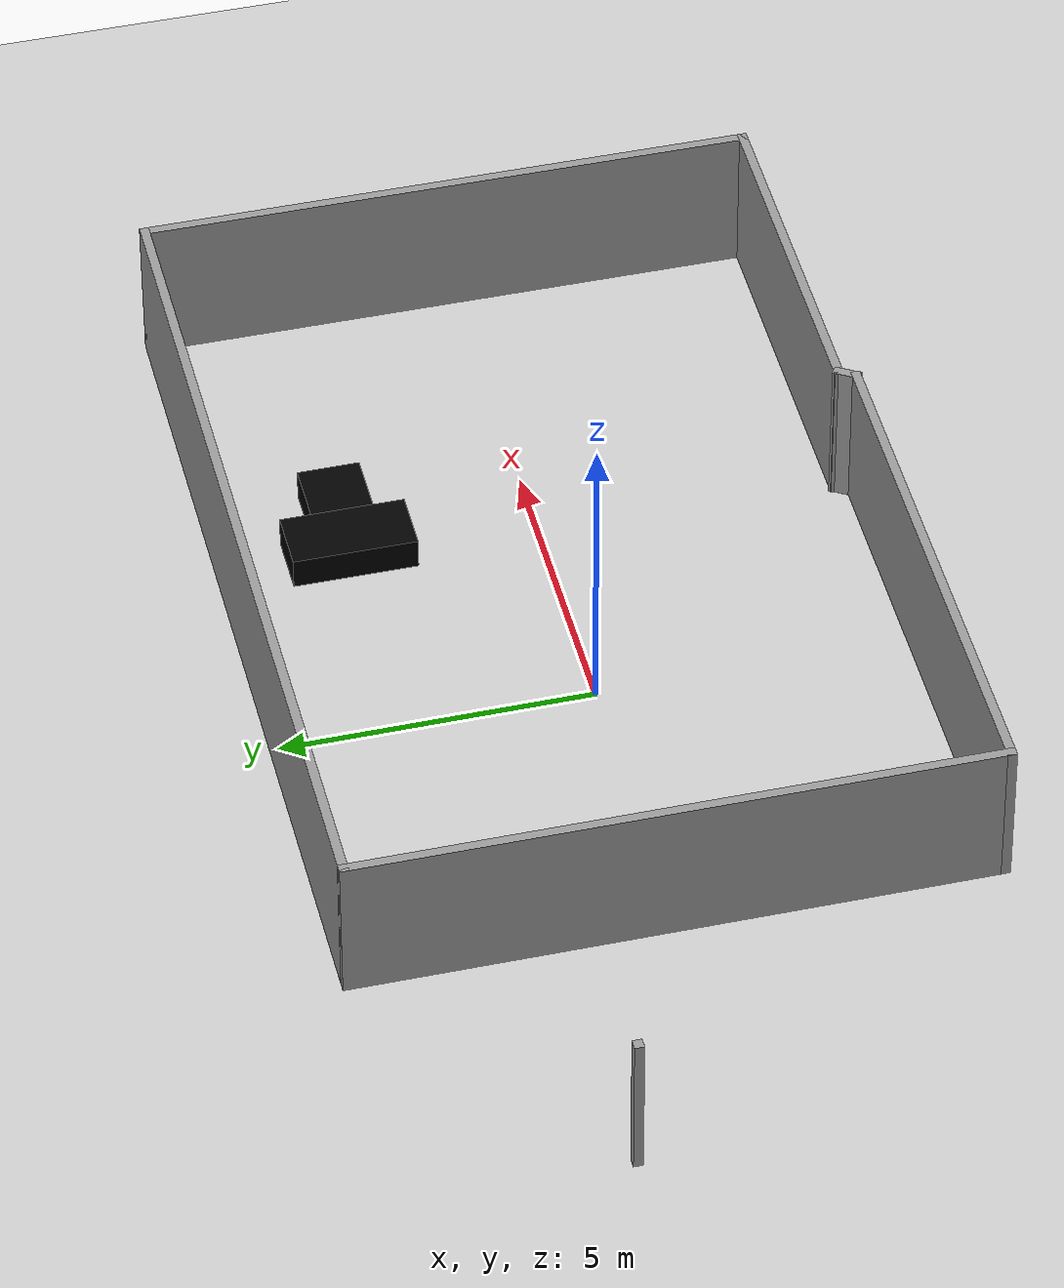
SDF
<sdf version='1.4'>
  <world name='default'>
    <!-- A global light source -->
    <include>
      <uri>model://sun</uri>
    </include>

    <!-- A ground plane -->
    <include>
      <uri>model://ground_plane</uri>
    </include>

    <include>
      <name>beer0</name>
      <uri>model://box1</uri>
      <static>true</static>
      <pose>5 3 0 0 0 0</pose>
    </include>

    <include>
      <name>box2</name>
      <uri>model://box2</uri>
      <static>true</static>
      <pose>4 3 0 0 0 0</pose>
    </include>

    <include>
      <name>wall</name>
      <uri>model://box5</uri>
      <static>true</static>
      <pose>0 0 0 0 0 0</pose>
    </include>

    <physics type="ode">
      <real_time_update_rate>1000.0</real_time_update_rate>
      <max_step_size>0.001</max_step_size>
      <real_time_factor>1</real_time_factor>
      <ode>
        <solver>
          <type>quick</type>
          <iters>150</iters>
          <precon_iters>0</precon_iters>
          <sor>1.400000</sor>
          <use_dynamic_moi_rescaling>1</use_dynamic_moi_rescaling>
        </solver>
        <constraints>
          <cfm>0.00001</cfm>
          <erp>0.2</erp>
          <contact_max_correcting_vel>2000.000000</contact_max_correcting_vel>
          <contact_surface_layer>0.01000</contact_surface_layer>
        </constraints>
      </ode>
    </physics>

    <!-- Load world -->

    <scene>
      <ambient>0.4 0.4 0.4 1</ambient>
      <background>0.7 0.7 0.7 1</background>
      <shadows>true</shadows>
    </scene>

    <gui fullscreen='0'>
      <camera name='user_camera'>
        <pose>0.8 0.0 12.0 0 1.5708 0</pose>
        <view_controller>orbit</view_controller>
      </camera>
    </gui>
  </world>
</sdf>

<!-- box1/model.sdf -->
<sdf version="1.4">
<model name="box1">
  <pose>0 0 0.5 0 0 0</pose>
    <link name="link">
      <inertial>
        <mass>1.0</mass>
        <inertia>
          <ixx>0.083</ixx>
          <ixy>0.0</ixy>
          <ixz>0.0</ixz>
          <iyy>0.083</iyy>
          <iyz>0.0</iyz>
          <izz>0.083</izz>
        </inertia>
      </inertial>
      <collision name="collision">
        <geometry>
          <box>
            <size>1 1 1</size>
          </box>
        </geometry>
      </collision>
      <visual name="visual">
        <material>
          <ambient>0 0 0 1</ambient>
          <diffuse>0 0 0 1</diffuse>
          <specular>0 0 0 1</specular>
          <emissive>1 1 0 1</emissive>
        </material>
        <geometry>
          <box>
            <size>1 1 1</size>
          </box>
        </geometry>
      </visual>
    </link>
  </model>
</sdf>

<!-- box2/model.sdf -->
<sdf version="1.4">
<model name="box2">
  <pose>0 0 0 0 0 0</pose>
    <link name="link">
      <inertial>
        <mass>1.0</mass>
        <inertia>
          <ixx>0.083</ixx>
          <ixy>0.0</ixy>
          <ixz>0.0</ixz>
          <iyy>0.083</iyy>
          <iyz>0.0</iyz>
          <izz>0.083</izz>
        </inertia>
      </inertial>
      <collision name="collision">
        <geometry>
          <box>
            <size>1 2 1</size>
          </box>
        </geometry>
      </collision>
      <visual name="visual">
        <material>
          <ambient>0 0 0 1</ambient>
          <diffuse>0 0 0 1</diffuse>
          <specular>0 0 0 1</specular>
          <emissive>1 0 0 1</emissive>
        </material>
        <geometry>
          <box>
            <size>1 2 1</size>
          </box>
        </geometry>
      </visual>
    </link>
  </model>
</sdf>

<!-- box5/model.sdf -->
<sdf version='1.7'>
  <model name='box5'>
    <pose>-1.08825 -0.334497 0 0 -0 0</pose>
    <link name='Wall_24'>
      <collision name='Wall_24_Collision'>
        <geometry>
          <box>
            <size>0.16 0.15 2.5</size>
          </box>
        </geometry>
        <pose>0 0 1.25 0 -0 0</pose>
      </collision>
      <visual name='Wall_24_Visual'>
        <pose>0 0 1.25 0 -0 0</pose>
        <geometry>
          <box>
            <size>0.16 0.15 2.5</size>
          </box>
        </geometry>
        <material>
          <script>
            <uri>file://media/materials/scripts/gazebo.material</uri>
            <name>Gazebo/Grey</name>
          </script>
          <ambient>0 0 0 1</ambient>
        </material>
        <meta>
          <layer>0</layer>
        </meta>
      </visual>
      <pose>-9.49546 1.75595 0 0 -0 0</pose>
    </link>
    <link name='Wall_25'>
      <collision name='Wall_25_Collision'>
        <geometry>
          <box>
            <size>8.75 0.15 2.5</size>
          </box>
        </geometry>
        <pose>0 0 1.25 0 -0 0</pose>
      </collision>
      <visual name='Wall_25_Visual'>
        <pose>0 0 1.25 0 -0 0</pose>
        <geometry>
          <box>
            <size>8.75 0.15 2.5</size>
          </box>
        </geometry>
        <material>
          <script>
            <uri>file://media/materials/scripts/gazebo.material</uri>
            <name>Gazebo/Grey</name>
          </script>
          <ambient>1 1 1 1</ambient>
        </material>
        <meta>
          <layer>0</layer>
        </meta>
      </visual>
      <pose>-0.799536 -5.03605 0 0 -0 3.14159</pose>
    </link>
    <link name='Wall_26'>
      <collision name='Wall_26_Collision'>
        <geometry>
          <box>
            <size>10.25 0.15 2.5</size>
          </box>
        </geometry>
        <pose>0 0 1.25 0 -0 0</pose>
      </collision>
      <visual name='Wall_26_Visual'>
        <pose>0 0 1.25 0 -0 0</pose>
        <geometry>
          <box>
            <size>10.25 0.15 2.5</size>
          </box>
        </geometry>
        <material>
          <script>
            <uri>file://media/materials/scripts/gazebo.material</uri>
            <name>Gazebo/Grey</name>
          </script>
          <ambient>1 1 1 1</ambient>
        </material>
        <meta>
          <layer>0</layer>
        </meta>
      </visual>
      <pose>-5.09954 0.013949 0 0 -0 1.5708</pose>
    </link>
    <link name='Wall_27'>
      <collision name='Wall_27_Collision'>
        <geometry>
          <box>
            <size>14.75 0.15 2.5</size>
          </box>
        </geometry>
        <pose>0 0 1.25 0 -0 0</pose>
      </collision>
      <visual name='Wall_27_Visual'>
        <pose>0 0 1.25 0 -0 0</pose>
        <geometry>
          <box>
            <size>14.75 0.15 2.5</size>
          </box>
        </geometry>
        <material>
          <script>
            <uri>file://media/materials/scripts/gazebo.material</uri>
            <name>Gazebo/Grey</name>
          </script>
          <ambient>1 1 1 1</ambient>
        </material>
        <meta>
          <layer>0</layer>
        </meta>
      </visual>
      <pose>2.20046 5.06395 0 0 -0 0</pose>
    </link>
    <link name='Wall_28'>
      <collision name='Wall_28_Collision'>
        <geometry>
          <box>
            <size>10 0.15 2.5</size>
          </box>
        </geometry>
        <pose>0 0 1.25 0 -0 0</pose>
      </collision>
      <visual name='Wall_28_Visual'>
        <pose>0 0 1.25 0 -0 0</pose>
        <geometry>
          <box>
            <size>10 0.15 2.5</size>
          </box>
        </geometry>
        <material>
          <script>
            <uri>file://media/materials/scripts/gazebo.material</uri>
            <name>Gazebo/Grey</name>
          </script>
          <ambient>1 1 1 1</ambient>
        </material>
        <meta>
          <layer>0</layer>
        </meta>
      </visual>
      <pose>9.50046 0.138949 0 0 -0 -1.5708</pose>
    </link>
    <link name='Wall_29'>
      <collision name='Wall_29_Collision'>
        <geometry>
          <box>
            <size>6 0.15 2.5</size>
          </box>
        </geometry>
        <pose>0 0 1.25 0 -0 0</pose>
      </collision>
      <visual name='Wall_29_Visual'>
        <pose>0 0 1.25 0 -0 0</pose>
        <geometry>
          <box>
            <size>6 0.15 2.5</size>
          </box>
        </geometry>
        <material>
          <script>
            <uri>file://media/materials/scripts/gazebo.material</uri>
            <name>Gazebo/Grey</name>
          </script>
          <ambient>1 1 1 1</ambient>
        </material>
        <meta>
          <layer>0</layer>
        </meta>
      </visual>
      <pose>6.57546 -4.78605 0 0 -0 3.14159</pose>
    </link>
    <link name='Wall_30'>
      <collision name='Wall_30_Collision'>
        <geometry>
          <box>
            <size>0.441548 0.15 2.5</size>
          </box>
        </geometry>
        <pose>0 0 1.25 0 -0 0</pose>
      </collision>
      <visual name='Wall_30_Visual'>
        <pose>0 0 1.25 0 -0 0</pose>
        <geometry>
          <box>
            <size>0.441548 0.15 2.5</size>
          </box>
        </geometry>
        <material>
          <script>
            <uri>file://media/materials/scripts/gazebo.material</uri>
            <name>Gazebo/Grey</name>
          </script>
          <ambient>1 1 1 1</ambient>
        </material>
        <meta>
          <layer>0</layer>
        </meta>
      </visual>
      <pose>3.57546 -4.91105 0 0 -0 -2.11122</pose>
    </link>
    <static>1</static>
  </model>
</sdf>
